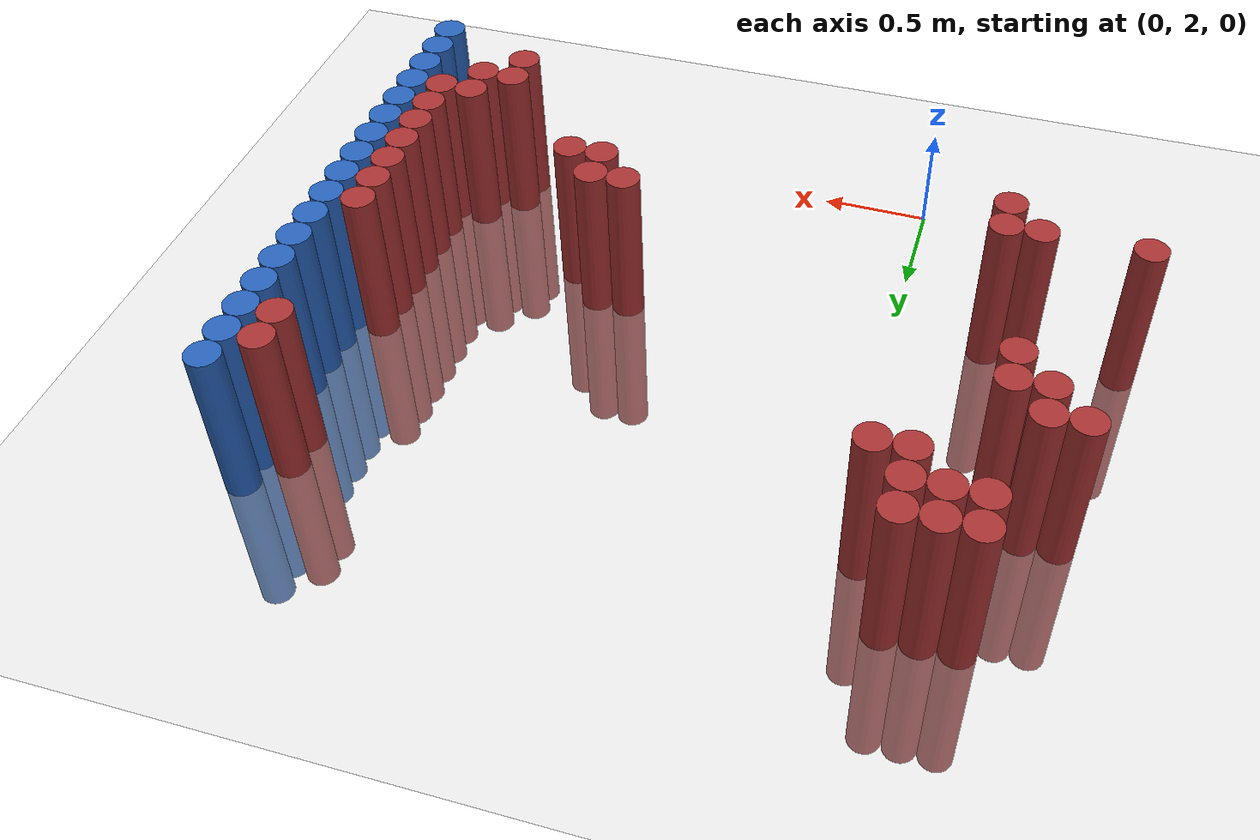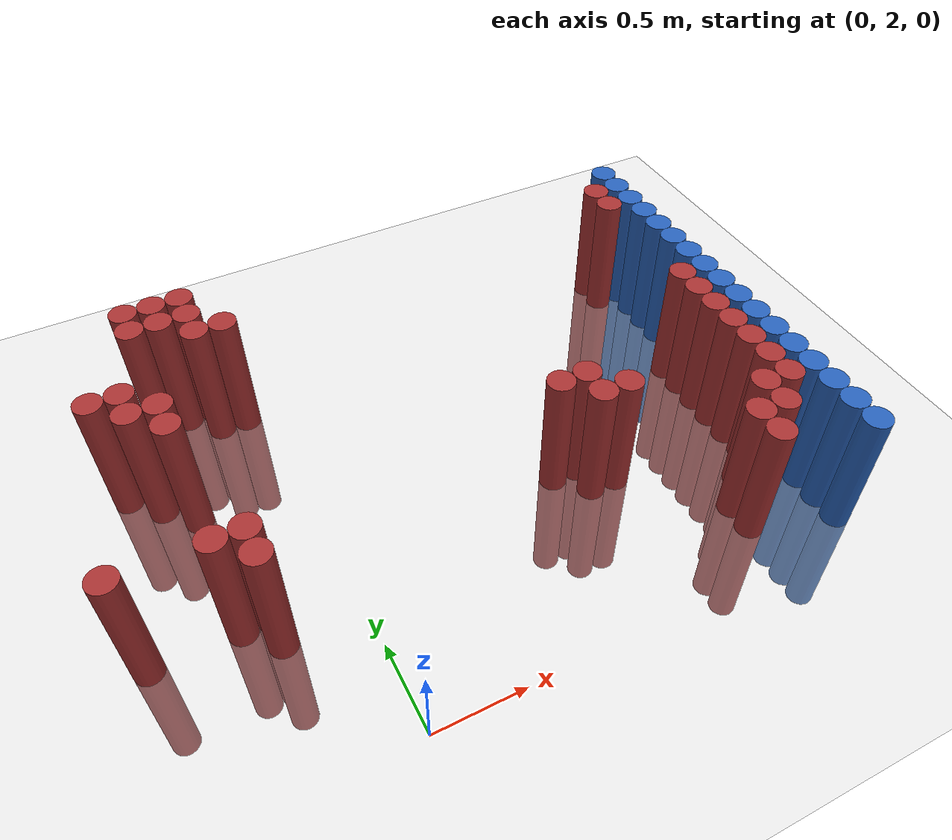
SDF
<sdf version="1.6">
 <world name="default">
  <model name="ground_plane">
   <static>1</static>
   <link name="link">
    <collision name="collision">
     <geometry><plane><normal>0 0 1</normal><size>100 100</size></plane></geometry>
     <surface><friction><ode><mu>100</mu><mu2>50</mu2></ode></friction></surface>
    </collision>
    <visual name="visual">
     <cast_shadows>0</cast_shadows>
     <geometry><plane><normal>0 0 1</normal><size>100 100</size></plane></geometry>
     <material>
      <script><uri>file://media/materials/scripts/gazebo.material</uri><name>Gazebo/Grey</name></script>
     </material>
    </visual>
   </link>
  </model>
  <model name="unit_cylinder_149">
   <static>1</static>
   <pose>-1.025000 2.875000 0.000000 0.000000 0.000000 0.000000</pose>
   <link name="link">
    <inertial>
     <mass>1</mass>
     <inertia><ixx>0.145833</ixx><ixy>0</ixy><ixz>0</ixz><iyy>0.145833</iyy><iyz>0</iyz><izz>0.125</izz></inertia>
    </inertial>
    <collision name="collision">
     <geometry><cylinder><radius>0.075000</radius><length>1.5</length></cylinder></geometry>
    </collision>
    <visual name="visual">
     <geometry><cylinder><radius>0.075000</radius><length>1.5</length></cylinder></geometry>
     <material>
      <ambient>0.648000 0.192000 0.192000 1</ambient>
      <diffuse>0.648000 0.192000 0.192000 1</diffuse>
     </material>
     <material>
      <script><name>Gazebo/Grey</name><uri>file://media/materials/scripts/gazebo.material</uri></script>
     </material>
    </visual>
   </link>
  </model>
  <model name="unit_cylinder_150">
   <static>1</static>
   <pose>-0.875000 3.925000 0.000000 0.000000 0.000000 0.000000</pose>
   <link name="link">
    <inertial>
     <mass>1</mass>
     <inertia><ixx>0.145833</ixx><ixy>0</ixy><ixz>0</ixz><iyy>0.145833</iyy><iyz>0</iyz><izz>0.125</izz></inertia>
    </inertial>
    <collision name="collision">
     <geometry><cylinder><radius>0.075000</radius><length>1.5</length></cylinder></geometry>
    </collision>
    <visual name="visual">
     <geometry><cylinder><radius>0.075000</radius><length>1.5</length></cylinder></geometry>
     <material>
      <ambient>0.648000 0.192000 0.192000 1</ambient>
      <diffuse>0.648000 0.192000 0.192000 1</diffuse>
     </material>
     <material>
      <script><name>Gazebo/Grey</name><uri>file://media/materials/scripts/gazebo.material</uri></script>
     </material>
    </visual>
   </link>
  </model>
  <model name="unit_cylinder_151">
   <static>1</static>
   <pose>-0.725000 3.775000 0.000000 0.000000 0.000000 0.000000</pose>
   <link name="link">
    <inertial>
     <mass>1</mass>
     <inertia><ixx>0.145833</ixx><ixy>0</ixy><ixz>0</ixz><iyy>0.145833</iyy><iyz>0</iyz><izz>0.125</izz></inertia>
    </inertial>
    <collision name="collision">
     <geometry><cylinder><radius>0.075000</radius><length>1.5</length></cylinder></geometry>
    </collision>
    <visual name="visual">
     <geometry><cylinder><radius>0.075000</radius><length>1.5</length></cylinder></geometry>
     <material>
      <ambient>0.648000 0.192000 0.192000 1</ambient>
      <diffuse>0.648000 0.192000 0.192000 1</diffuse>
     </material>
     <material>
      <script><name>Gazebo/Grey</name><uri>file://media/materials/scripts/gazebo.material</uri></script>
     </material>
    </visual>
   </link>
  </model>
  <model name="unit_cylinder_152">
   <static>1</static>
   <pose>-0.725000 3.925000 0.000000 0.000000 0.000000 0.000000</pose>
   <link name="link">
    <inertial>
     <mass>1</mass>
     <inertia><ixx>0.145833</ixx><ixy>0</ixy><ixz>0</ixz><iyy>0.145833</iyy><iyz>0</iyz><izz>0.125</izz></inertia>
    </inertial>
    <collision name="collision">
     <geometry><cylinder><radius>0.075000</radius><length>1.5</length></cylinder></geometry>
    </collision>
    <visual name="visual">
     <geometry><cylinder><radius>0.075000</radius><length>1.5</length></cylinder></geometry>
     <material>
      <ambient>0.648000 0.192000 0.192000 1</ambient>
      <diffuse>0.648000 0.192000 0.192000 1</diffuse>
     </material>
     <material>
      <script><name>Gazebo/Grey</name><uri>file://media/materials/scripts/gazebo.material</uri></script>
     </material>
    </visual>
   </link>
  </model>
  <model name="unit_cylinder_157">
   <static>1</static>
   <pose>-0.575000 2.875000 0.000000 0.000000 0.000000 0.000000</pose>
   <link name="link">
    <inertial>
     <mass>1</mass>
     <inertia><ixx>0.145833</ixx><ixy>0</ixy><ixz>0</ixz><iyy>0.145833</iyy><iyz>0</iyz><izz>0.125</izz></inertia>
    </inertial>
    <collision name="collision">
     <geometry><cylinder><radius>0.075000</radius><length>1.5</length></cylinder></geometry>
    </collision>
    <visual name="visual">
     <geometry><cylinder><radius>0.075000</radius><length>1.5</length></cylinder></geometry>
     <material>
      <ambient>0.648000 0.192000 0.192000 1</ambient>
      <diffuse>0.648000 0.192000 0.192000 1</diffuse>
     </material>
     <material>
      <script><name>Gazebo/Grey</name><uri>file://media/materials/scripts/gazebo.material</uri></script>
     </material>
    </visual>
   </link>
  </model>
  <model name="unit_cylinder_158">
   <static>1</static>
   <pose>-0.575000 3.625000 0.000000 0.000000 0.000000 0.000000</pose>
   <link name="link">
    <inertial>
     <mass>1</mass>
     <inertia><ixx>0.145833</ixx><ixy>0</ixy><ixz>0</ixz><iyy>0.145833</iyy><iyz>0</iyz><izz>0.125</izz></inertia>
    </inertial>
    <collision name="collision">
     <geometry><cylinder><radius>0.075000</radius><length>1.5</length></cylinder></geometry>
    </collision>
    <visual name="visual">
     <geometry><cylinder><radius>0.075000</radius><length>1.5</length></cylinder></geometry>
     <material>
      <ambient>0.648000 0.192000 0.192000 1</ambient>
      <diffuse>0.648000 0.192000 0.192000 1</diffuse>
     </material>
     <material>
      <script><name>Gazebo/Grey</name><uri>file://media/materials/scripts/gazebo.material</uri></script>
     </material>
    </visual>
   </link>
  </model>
  <model name="unit_cylinder_159">
   <static>1</static>
   <pose>-0.575000 3.775000 0.000000 0.000000 0.000000 0.000000</pose>
   <link name="link">
    <inertial>
     <mass>1</mass>
     <inertia><ixx>0.145833</ixx><ixy>0</ixy><ixz>0</ixz><iyy>0.145833</iyy><iyz>0</iyz><izz>0.125</izz></inertia>
    </inertial>
    <collision name="collision">
     <geometry><cylinder><radius>0.075000</radius><length>1.5</length></cylinder></geometry>
    </collision>
    <visual name="visual">
     <geometry><cylinder><radius>0.075000</radius><length>1.5</length></cylinder></geometry>
     <material>
      <ambient>0.648000 0.192000 0.192000 1</ambient>
      <diffuse>0.648000 0.192000 0.192000 1</diffuse>
     </material>
     <material>
      <script><name>Gazebo/Grey</name><uri>file://media/materials/scripts/gazebo.material</uri></script>
     </material>
    </visual>
   </link>
  </model>
  <model name="unit_cylinder_160">
   <static>1</static>
   <pose>-0.575000 4.375000 0.000000 0.000000 0.000000 0.000000</pose>
   <link name="link">
    <inertial>
     <mass>1</mass>
     <inertia><ixx>0.145833</ixx><ixy>0</ixy><ixz>0</ixz><iyy>0.145833</iyy><iyz>0</iyz><izz>0.125</izz></inertia>
    </inertial>
    <collision name="collision">
     <geometry><cylinder><radius>0.075000</radius><length>1.5</length></cylinder></geometry>
    </collision>
    <visual name="visual">
     <geometry><cylinder><radius>0.075000</radius><length>1.5</length></cylinder></geometry>
     <material>
      <ambient>0.648000 0.192000 0.192000 1</ambient>
      <diffuse>0.648000 0.192000 0.192000 1</diffuse>
     </material>
     <material>
      <script><name>Gazebo/Grey</name><uri>file://media/materials/scripts/gazebo.material</uri></script>
     </material>
    </visual>
   </link>
  </model>
  <model name="unit_cylinder_161">
   <static>1</static>
   <pose>-0.575000 4.525000 0.000000 0.000000 0.000000 0.000000</pose>
   <link name="link">
    <inertial>
     <mass>1</mass>
     <inertia><ixx>0.145833</ixx><ixy>0</ixy><ixz>0</ixz><iyy>0.145833</iyy><iyz>0</iyz><izz>0.125</izz></inertia>
    </inertial>
    <collision name="collision">
     <geometry><cylinder><radius>0.075000</radius><length>1.5</length></cylinder></geometry>
    </collision>
    <visual name="visual">
     <geometry><cylinder><radius>0.075000</radius><length>1.5</length></cylinder></geometry>
     <material>
      <ambient>0.648000 0.192000 0.192000 1</ambient>
      <diffuse>0.648000 0.192000 0.192000 1</diffuse>
     </material>
     <material>
      <script><name>Gazebo/Grey</name><uri>file://media/materials/scripts/gazebo.material</uri></script>
     </material>
    </visual>
   </link>
  </model>
  <model name="unit_cylinder_165">
   <static>1</static>
   <pose>-0.425000 2.725000 0.000000 0.000000 0.000000 0.000000</pose>
   <link name="link">
    <inertial>
     <mass>1</mass>
     <inertia><ixx>0.145833</ixx><ixy>0</ixy><ixz>0</ixz><iyy>0.145833</iyy><iyz>0</iyz><izz>0.125</izz></inertia>
    </inertial>
    <collision name="collision">
     <geometry><cylinder><radius>0.075000</radius><length>1.5</length></cylinder></geometry>
    </collision>
    <visual name="visual">
     <geometry><cylinder><radius>0.075000</radius><length>1.5</length></cylinder></geometry>
     <material>
      <ambient>0.648000 0.192000 0.192000 1</ambient>
      <diffuse>0.648000 0.192000 0.192000 1</diffuse>
     </material>
     <material>
      <script><name>Gazebo/Grey</name><uri>file://media/materials/scripts/gazebo.material</uri></script>
     </material>
    </visual>
   </link>
  </model>
  <model name="unit_cylinder_166">
   <static>1</static>
   <pose>-0.425000 2.875000 0.000000 0.000000 0.000000 0.000000</pose>
   <link name="link">
    <inertial>
     <mass>1</mass>
     <inertia><ixx>0.145833</ixx><ixy>0</ixy><ixz>0</ixz><iyy>0.145833</iyy><iyz>0</iyz><izz>0.125</izz></inertia>
    </inertial>
    <collision name="collision">
     <geometry><cylinder><radius>0.075000</radius><length>1.5</length></cylinder></geometry>
    </collision>
    <visual name="visual">
     <geometry><cylinder><radius>0.075000</radius><length>1.5</length></cylinder></geometry>
     <material>
      <ambient>0.648000 0.192000 0.192000 1</ambient>
      <diffuse>0.648000 0.192000 0.192000 1</diffuse>
     </material>
     <material>
      <script><name>Gazebo/Grey</name><uri>file://media/materials/scripts/gazebo.material</uri></script>
     </material>
    </visual>
   </link>
  </model>
  <model name="unit_cylinder_167">
   <static>1</static>
   <pose>-0.425000 4.375000 0.000000 0.000000 0.000000 0.000000</pose>
   <link name="link">
    <inertial>
     <mass>1</mass>
     <inertia><ixx>0.145833</ixx><ixy>0</ixy><ixz>0</ixz><iyy>0.145833</iyy><iyz>0</iyz><izz>0.125</izz></inertia>
    </inertial>
    <collision name="collision">
     <geometry><cylinder><radius>0.075000</radius><length>1.5</length></cylinder></geometry>
    </collision>
    <visual name="visual">
     <geometry><cylinder><radius>0.075000</radius><length>1.5</length></cylinder></geometry>
     <material>
      <ambient>0.648000 0.192000 0.192000 1</ambient>
      <diffuse>0.648000 0.192000 0.192000 1</diffuse>
     </material>
     <material>
      <script><name>Gazebo/Grey</name><uri>file://media/materials/scripts/gazebo.material</uri></script>
     </material>
    </visual>
   </link>
  </model>
  <model name="unit_cylinder_168">
   <static>1</static>
   <pose>-0.425000 4.525000 0.000000 0.000000 0.000000 0.000000</pose>
   <link name="link">
    <inertial>
     <mass>1</mass>
     <inertia><ixx>0.145833</ixx><ixy>0</ixy><ixz>0</ixz><iyy>0.145833</iyy><iyz>0</iyz><izz>0.125</izz></inertia>
    </inertial>
    <collision name="collision">
     <geometry><cylinder><radius>0.075000</radius><length>1.5</length></cylinder></geometry>
    </collision>
    <visual name="visual">
     <geometry><cylinder><radius>0.075000</radius><length>1.5</length></cylinder></geometry>
     <material>
      <ambient>0.648000 0.192000 0.192000 1</ambient>
      <diffuse>0.648000 0.192000 0.192000 1</diffuse>
     </material>
     <material>
      <script><name>Gazebo/Grey</name><uri>file://media/materials/scripts/gazebo.material</uri></script>
     </material>
    </visual>
   </link>
  </model>
  <model name="unit_cylinder_171">
   <static>1</static>
   <pose>-0.275000 4.225000 0.000000 0.000000 0.000000 0.000000</pose>
   <link name="link">
    <inertial>
     <mass>1</mass>
     <inertia><ixx>0.145833</ixx><ixy>0</ixy><ixz>0</ixz><iyy>0.145833</iyy><iyz>0</iyz><izz>0.125</izz></inertia>
    </inertial>
    <collision name="collision">
     <geometry><cylinder><radius>0.075000</radius><length>1.5</length></cylinder></geometry>
    </collision>
    <visual name="visual">
     <geometry><cylinder><radius>0.075000</radius><length>1.5</length></cylinder></geometry>
     <material>
      <ambient>0.648000 0.192000 0.192000 1</ambient>
      <diffuse>0.648000 0.192000 0.192000 1</diffuse>
     </material>
     <material>
      <script><name>Gazebo/Grey</name><uri>file://media/materials/scripts/gazebo.material</uri></script>
     </material>
    </visual>
   </link>
  </model>
  <model name="unit_cylinder_172">
   <static>1</static>
   <pose>-0.275000 4.375000 0.000000 0.000000 0.000000 0.000000</pose>
   <link name="link">
    <inertial>
     <mass>1</mass>
     <inertia><ixx>0.145833</ixx><ixy>0</ixy><ixz>0</ixz><iyy>0.145833</iyy><iyz>0</iyz><izz>0.125</izz></inertia>
    </inertial>
    <collision name="collision">
     <geometry><cylinder><radius>0.075000</radius><length>1.5</length></cylinder></geometry>
    </collision>
    <visual name="visual">
     <geometry><cylinder><radius>0.075000</radius><length>1.5</length></cylinder></geometry>
     <material>
      <ambient>0.648000 0.192000 0.192000 1</ambient>
      <diffuse>0.648000 0.192000 0.192000 1</diffuse>
     </material>
     <material>
      <script><name>Gazebo/Grey</name><uri>file://media/materials/scripts/gazebo.material</uri></script>
     </material>
    </visual>
   </link>
  </model>
  <model name="unit_cylinder_173">
   <static>1</static>
   <pose>-0.275000 4.525000 0.000000 0.000000 0.000000 0.000000</pose>
   <link name="link">
    <inertial>
     <mass>1</mass>
     <inertia><ixx>0.145833</ixx><ixy>0</ixy><ixz>0</ixz><iyy>0.145833</iyy><iyz>0</iyz><izz>0.125</izz></inertia>
    </inertial>
    <collision name="collision">
     <geometry><cylinder><radius>0.075000</radius><length>1.5</length></cylinder></geometry>
    </collision>
    <visual name="visual">
     <geometry><cylinder><radius>0.075000</radius><length>1.5</length></cylinder></geometry>
     <material>
      <ambient>0.648000 0.192000 0.192000 1</ambient>
      <diffuse>0.648000 0.192000 0.192000 1</diffuse>
     </material>
     <material>
      <script><name>Gazebo/Grey</name><uri>file://media/materials/scripts/gazebo.material</uri></script>
     </material>
    </visual>
   </link>
  </model>
  <model name="unit_cylinder_177">
   <static>1</static>
   <pose>-0.125000 4.225000 0.000000 0.000000 0.000000 0.000000</pose>
   <link name="link">
    <inertial>
     <mass>1</mass>
     <inertia><ixx>0.145833</ixx><ixy>0</ixy><ixz>0</ixz><iyy>0.145833</iyy><iyz>0</iyz><izz>0.125</izz></inertia>
    </inertial>
    <collision name="collision">
     <geometry><cylinder><radius>0.075000</radius><length>1.5</length></cylinder></geometry>
    </collision>
    <visual name="visual">
     <geometry><cylinder><radius>0.075000</radius><length>1.5</length></cylinder></geometry>
     <material>
      <ambient>0.648000 0.192000 0.192000 1</ambient>
      <diffuse>0.648000 0.192000 0.192000 1</diffuse>
     </material>
     <material>
      <script><name>Gazebo/Grey</name><uri>file://media/materials/scripts/gazebo.material</uri></script>
     </material>
    </visual>
   </link>
  </model>
  <model name="unit_cylinder_203">
   <static>1</static>
   <pose>1.225000 3.025000 0.000000 0.000000 0.000000 0.000000</pose>
   <link name="link">
    <inertial>
     <mass>1</mass>
     <inertia><ixx>0.145833</ixx><ixy>0</ixy><ixz>0</ixz><iyy>0.145833</iyy><iyz>0</iyz><izz>0.125</izz></inertia>
    </inertial>
    <collision name="collision">
     <geometry><cylinder><radius>0.075000</radius><length>1.5</length></cylinder></geometry>
    </collision>
    <visual name="visual">
     <geometry><cylinder><radius>0.075000</radius><length>1.5</length></cylinder></geometry>
     <material>
      <ambient>0.648000 0.192000 0.192000 1</ambient>
      <diffuse>0.648000 0.192000 0.192000 1</diffuse>
     </material>
     <material>
      <script><name>Gazebo/Grey</name><uri>file://media/materials/scripts/gazebo.material</uri></script>
     </material>
    </visual>
   </link>
  </model>
  <model name="unit_cylinder_205">
   <static>1</static>
   <pose>1.375000 2.875000 0.000000 0.000000 0.000000 0.000000</pose>
   <link name="link">
    <inertial>
     <mass>1</mass>
     <inertia><ixx>0.145833</ixx><ixy>0</ixy><ixz>0</ixz><iyy>0.145833</iyy><iyz>0</iyz><izz>0.125</izz></inertia>
    </inertial>
    <collision name="collision">
     <geometry><cylinder><radius>0.075000</radius><length>1.5</length></cylinder></geometry>
    </collision>
    <visual name="visual">
     <geometry><cylinder><radius>0.075000</radius><length>1.5</length></cylinder></geometry>
     <material>
      <ambient>0.648000 0.192000 0.192000 1</ambient>
      <diffuse>0.648000 0.192000 0.192000 1</diffuse>
     </material>
     <material>
      <script><name>Gazebo/Grey</name><uri>file://media/materials/scripts/gazebo.material</uri></script>
     </material>
    </visual>
   </link>
  </model>
  <model name="unit_cylinder_206">
   <static>1</static>
   <pose>1.375000 3.025000 0.000000 0.000000 0.000000 0.000000</pose>
   <link name="link">
    <inertial>
     <mass>1</mass>
     <inertia><ixx>0.145833</ixx><ixy>0</ixy><ixz>0</ixz><iyy>0.145833</iyy><iyz>0</iyz><izz>0.125</izz></inertia>
    </inertial>
    <collision name="collision">
     <geometry><cylinder><radius>0.075000</radius><length>1.5</length></cylinder></geometry>
    </collision>
    <visual name="visual">
     <geometry><cylinder><radius>0.075000</radius><length>1.5</length></cylinder></geometry>
     <material>
      <ambient>0.648000 0.192000 0.192000 1</ambient>
      <diffuse>0.648000 0.192000 0.192000 1</diffuse>
     </material>
     <material>
      <script><name>Gazebo/Grey</name><uri>file://media/materials/scripts/gazebo.material</uri></script>
     </material>
    </visual>
   </link>
  </model>
  <model name="unit_cylinder_207">
   <static>1</static>
   <pose>1.525000 2.875000 0.000000 0.000000 0.000000 0.000000</pose>
   <link name="link">
    <inertial>
     <mass>1</mass>
     <inertia><ixx>0.145833</ixx><ixy>0</ixy><ixz>0</ixz><iyy>0.145833</iyy><iyz>0</iyz><izz>0.125</izz></inertia>
    </inertial>
    <collision name="collision">
     <geometry><cylinder><radius>0.075000</radius><length>1.5</length></cylinder></geometry>
    </collision>
    <visual name="visual">
     <geometry><cylinder><radius>0.075000</radius><length>1.5</length></cylinder></geometry>
     <material>
      <ambient>0.648000 0.192000 0.192000 1</ambient>
      <diffuse>0.648000 0.192000 0.192000 1</diffuse>
     </material>
     <material>
      <script><name>Gazebo/Grey</name><uri>file://media/materials/scripts/gazebo.material</uri></script>
     </material>
    </visual>
   </link>
  </model>
  <model name="unit_cylinder_209">
   <static>1</static>
   <pose>1.975000 2.275000 0.000000 0.000000 0.000000 0.000000</pose>
   <link name="link">
    <inertial>
     <mass>1</mass>
     <inertia><ixx>0.145833</ixx><ixy>0</ixy><ixz>0</ixz><iyy>0.145833</iyy><iyz>0</iyz><izz>0.125</izz></inertia>
    </inertial>
    <collision name="collision">
     <geometry><cylinder><radius>0.075000</radius><length>1.5</length></cylinder></geometry>
    </collision>
    <visual name="visual">
     <geometry><cylinder><radius>0.075000</radius><length>1.5</length></cylinder></geometry>
     <material>
      <ambient>0.648000 0.192000 0.192000 1</ambient>
      <diffuse>0.648000 0.192000 0.192000 1</diffuse>
     </material>
     <material>
      <script><name>Gazebo/Grey</name><uri>file://media/materials/scripts/gazebo.material</uri></script>
     </material>
    </visual>
   </link>
  </model>
  <model name="unit_cylinder_210">
   <static>1</static>
   <pose>1.975000 2.425000 0.000000 0.000000 0.000000 0.000000</pose>
   <link name="link">
    <inertial>
     <mass>1</mass>
     <inertia><ixx>0.145833</ixx><ixy>0</ixy><ixz>0</ixz><iyy>0.145833</iyy><iyz>0</iyz><izz>0.125</izz></inertia>
    </inertial>
    <collision name="collision">
     <geometry><cylinder><radius>0.075000</radius><length>1.5</length></cylinder></geometry>
    </collision>
    <visual name="visual">
     <geometry><cylinder><radius>0.075000</radius><length>1.5</length></cylinder></geometry>
     <material>
      <ambient>0.648000 0.192000 0.192000 1</ambient>
      <diffuse>0.648000 0.192000 0.192000 1</diffuse>
     </material>
     <material>
      <script><name>Gazebo/Grey</name><uri>file://media/materials/scripts/gazebo.material</uri></script>
     </material>
    </visual>
   </link>
  </model>
  <model name="unit_cylinder_213">
   <static>1</static>
   <pose>2.125000 2.425000 0.000000 0.000000 0.000000 0.000000</pose>
   <link name="link">
    <inertial>
     <mass>1</mass>
     <inertia><ixx>0.145833</ixx><ixy>0</ixy><ixz>0</ixz><iyy>0.145833</iyy><iyz>0</iyz><izz>0.125</izz></inertia>
    </inertial>
    <collision name="collision">
     <geometry><cylinder><radius>0.075000</radius><length>1.5</length></cylinder></geometry>
    </collision>
    <visual name="visual">
     <geometry><cylinder><radius>0.075000</radius><length>1.5</length></cylinder></geometry>
     <material>
      <ambient>0.648000 0.192000 0.192000 1</ambient>
      <diffuse>0.648000 0.192000 0.192000 1</diffuse>
     </material>
     <material>
      <script><name>Gazebo/Grey</name><uri>file://media/materials/scripts/gazebo.material</uri></script>
     </material>
    </visual>
   </link>
  </model>
  <model name="unit_cylinder_214">
   <static>1</static>
   <pose>2.125000 2.575000 0.000000 0.000000 0.000000 0.000000</pose>
   <link name="link">
    <inertial>
     <mass>1</mass>
     <inertia><ixx>0.145833</ixx><ixy>0</ixy><ixz>0</ixz><iyy>0.145833</iyy><iyz>0</iyz><izz>0.125</izz></inertia>
    </inertial>
    <collision name="collision">
     <geometry><cylinder><radius>0.075000</radius><length>1.5</length></cylinder></geometry>
    </collision>
    <visual name="visual">
     <geometry><cylinder><radius>0.075000</radius><length>1.5</length></cylinder></geometry>
     <material>
      <ambient>0.648000 0.192000 0.192000 1</ambient>
      <diffuse>0.648000 0.192000 0.192000 1</diffuse>
     </material>
     <material>
      <script><name>Gazebo/Grey</name><uri>file://media/materials/scripts/gazebo.material</uri></script>
     </material>
    </visual>
   </link>
  </model>
  <model name="unit_cylinder_219">
   <static>1</static>
   <pose>2.275000 2.575000 0.000000 0.000000 0.000000 0.000000</pose>
   <link name="link">
    <inertial>
     <mass>1</mass>
     <inertia><ixx>0.145833</ixx><ixy>0</ixy><ixz>0</ixz><iyy>0.145833</iyy><iyz>0</iyz><izz>0.125</izz></inertia>
    </inertial>
    <collision name="collision">
     <geometry><cylinder><radius>0.075000</radius><length>1.5</length></cylinder></geometry>
    </collision>
    <visual name="visual">
     <geometry><cylinder><radius>0.075000</radius><length>1.5</length></cylinder></geometry>
     <material>
      <ambient>0.648000 0.192000 0.192000 1</ambient>
      <diffuse>0.648000 0.192000 0.192000 1</diffuse>
     </material>
     <material>
      <script><name>Gazebo/Grey</name><uri>file://media/materials/scripts/gazebo.material</uri></script>
     </material>
    </visual>
   </link>
  </model>
  <model name="unit_cylinder_220">
   <static>1</static>
   <pose>2.275000 2.725000 0.000000 0.000000 0.000000 0.000000</pose>
   <link name="link">
    <inertial>
     <mass>1</mass>
     <inertia><ixx>0.145833</ixx><ixy>0</ixy><ixz>0</ixz><iyy>0.145833</iyy><iyz>0</iyz><izz>0.125</izz></inertia>
    </inertial>
    <collision name="collision">
     <geometry><cylinder><radius>0.075000</radius><length>1.5</length></cylinder></geometry>
    </collision>
    <visual name="visual">
     <geometry><cylinder><radius>0.075000</radius><length>1.5</length></cylinder></geometry>
     <material>
      <ambient>0.648000 0.192000 0.192000 1</ambient>
      <diffuse>0.648000 0.192000 0.192000 1</diffuse>
     </material>
     <material>
      <script><name>Gazebo/Grey</name><uri>file://media/materials/scripts/gazebo.material</uri></script>
     </material>
    </visual>
   </link>
  </model>
  <model name="unit_cylinder_221">
   <static>1</static>
   <pose>2.275000 2.875000 0.000000 0.000000 0.000000 0.000000</pose>
   <link name="link">
    <inertial>
     <mass>1</mass>
     <inertia><ixx>0.145833</ixx><ixy>0</ixy><ixz>0</ixz><iyy>0.145833</iyy><iyz>0</iyz><izz>0.125</izz></inertia>
    </inertial>
    <collision name="collision">
     <geometry><cylinder><radius>0.075000</radius><length>1.5</length></cylinder></geometry>
    </collision>
    <visual name="visual">
     <geometry><cylinder><radius>0.075000</radius><length>1.5</length></cylinder></geometry>
     <material>
      <ambient>0.648000 0.192000 0.192000 1</ambient>
      <diffuse>0.648000 0.192000 0.192000 1</diffuse>
     </material>
     <material>
      <script><name>Gazebo/Grey</name><uri>file://media/materials/scripts/gazebo.material</uri></script>
     </material>
    </visual>
   </link>
  </model>
  <model name="unit_cylinder_222">
   <static>1</static>
   <pose>2.275000 3.025000 0.000000 0.000000 0.000000 0.000000</pose>
   <link name="link">
    <inertial>
     <mass>1</mass>
     <inertia><ixx>0.145833</ixx><ixy>0</ixy><ixz>0</ixz><iyy>0.145833</iyy><iyz>0</iyz><izz>0.125</izz></inertia>
    </inertial>
    <collision name="collision">
     <geometry><cylinder><radius>0.075000</radius><length>1.5</length></cylinder></geometry>
    </collision>
    <visual name="visual">
     <geometry><cylinder><radius>0.075000</radius><length>1.5</length></cylinder></geometry>
     <material>
      <ambient>0.648000 0.192000 0.192000 1</ambient>
      <diffuse>0.648000 0.192000 0.192000 1</diffuse>
     </material>
     <material>
      <script><name>Gazebo/Grey</name><uri>file://media/materials/scripts/gazebo.material</uri></script>
     </material>
    </visual>
   </link>
  </model>
  <model name="unit_cylinder_223">
   <static>1</static>
   <pose>2.275000 3.175000 0.000000 0.000000 0.000000 0.000000</pose>
   <link name="link">
    <inertial>
     <mass>1</mass>
     <inertia><ixx>0.145833</ixx><ixy>0</ixy><ixz>0</ixz><iyy>0.145833</iyy><iyz>0</iyz><izz>0.125</izz></inertia>
    </inertial>
    <collision name="collision">
     <geometry><cylinder><radius>0.075000</radius><length>1.5</length></cylinder></geometry>
    </collision>
    <visual name="visual">
     <geometry><cylinder><radius>0.075000</radius><length>1.5</length></cylinder></geometry>
     <material>
      <ambient>0.648000 0.192000 0.192000 1</ambient>
      <diffuse>0.648000 0.192000 0.192000 1</diffuse>
     </material>
     <material>
      <script><name>Gazebo/Grey</name><uri>file://media/materials/scripts/gazebo.material</uri></script>
     </material>
    </visual>
   </link>
  </model>
  <model name="unit_cylinder_224">
   <static>1</static>
   <pose>2.275000 3.325000 0.000000 0.000000 0.000000 0.000000</pose>
   <link name="link">
    <inertial>
     <mass>1</mass>
     <inertia><ixx>0.145833</ixx><ixy>0</ixy><ixz>0</ixz><iyy>0.145833</iyy><iyz>0</iyz><izz>0.125</izz></inertia>
    </inertial>
    <collision name="collision">
     <geometry><cylinder><radius>0.075000</radius><length>1.5</length></cylinder></geometry>
    </collision>
    <visual name="visual">
     <geometry><cylinder><radius>0.075000</radius><length>1.5</length></cylinder></geometry>
     <material>
      <ambient>0.648000 0.192000 0.192000 1</ambient>
      <diffuse>0.648000 0.192000 0.192000 1</diffuse>
     </material>
     <material>
      <script><name>Gazebo/Grey</name><uri>file://media/materials/scripts/gazebo.material</uri></script>
     </material>
    </visual>
   </link>
  </model>
  <model name="unit_cylinder_225">
   <static>1</static>
   <pose>2.275000 3.475000 0.000000 0.000000 0.000000 0.000000</pose>
   <link name="link">
    <inertial>
     <mass>1</mass>
     <inertia><ixx>0.145833</ixx><ixy>0</ixy><ixz>0</ixz><iyy>0.145833</iyy><iyz>0</iyz><izz>0.125</izz></inertia>
    </inertial>
    <collision name="collision">
     <geometry><cylinder><radius>0.075000</radius><length>1.5</length></cylinder></geometry>
    </collision>
    <visual name="visual">
     <geometry><cylinder><radius>0.075000</radius><length>1.5</length></cylinder></geometry>
     <material>
      <ambient>0.648000 0.192000 0.192000 1</ambient>
      <diffuse>0.648000 0.192000 0.192000 1</diffuse>
     </material>
     <material>
      <script><name>Gazebo/Grey</name><uri>file://media/materials/scripts/gazebo.material</uri></script>
     </material>
    </visual>
   </link>
  </model>
  <model name="unit_cylinder_226">
   <static>1</static>
   <pose>2.275000 4.225000 0.000000 0.000000 0.000000 0.000000</pose>
   <link name="link">
    <inertial>
     <mass>1</mass>
     <inertia><ixx>0.145833</ixx><ixy>0</ixy><ixz>0</ixz><iyy>0.145833</iyy><iyz>0</iyz><izz>0.125</izz></inertia>
    </inertial>
    <collision name="collision">
     <geometry><cylinder><radius>0.075000</radius><length>1.5</length></cylinder></geometry>
    </collision>
    <visual name="visual">
     <geometry><cylinder><radius>0.075000</radius><length>1.5</length></cylinder></geometry>
     <material>
      <ambient>0.648000 0.192000 0.192000 1</ambient>
      <diffuse>0.648000 0.192000 0.192000 1</diffuse>
     </material>
     <material>
      <script><name>Gazebo/Grey</name><uri>file://media/materials/scripts/gazebo.material</uri></script>
     </material>
    </visual>
   </link>
  </model>
  <model name="unit_cylinder_227">
   <static>1</static>
   <pose>2.275000 4.375000 0.000000 0.000000 0.000000 0.000000</pose>
   <link name="link">
    <inertial>
     <mass>1</mass>
     <inertia><ixx>0.145833</ixx><ixy>0</ixy><ixz>0</ixz><iyy>0.145833</iyy><iyz>0</iyz><izz>0.125</izz></inertia>
    </inertial>
    <collision name="collision">
     <geometry><cylinder><radius>0.075000</radius><length>1.5</length></cylinder></geometry>
    </collision>
    <visual name="visual">
     <geometry><cylinder><radius>0.075000</radius><length>1.5</length></cylinder></geometry>
     <material>
      <ambient>0.648000 0.192000 0.192000 1</ambient>
      <diffuse>0.648000 0.192000 0.192000 1</diffuse>
     </material>
     <material>
      <script><name>Gazebo/Grey</name><uri>file://media/materials/scripts/gazebo.material</uri></script>
     </material>
    </visual>
   </link>
  </model>
  <model name="unit_cylinder_241">
   <static>1</static>
   <pose>2.425000 2.125000 0.000000 0.000000 0.000000 0.000000</pose>
   <link name="link">
    <inertial>
     <mass>1</mass>
     <inertia><ixx>0.145833</ixx><ixy>0</ixy><ixz>0</ixz><iyy>0.145833</iyy><iyz>0</iyz><izz>0.125</izz></inertia>
    </inertial>
    <collision name="collision">
     <geometry><cylinder><radius>0.075000</radius><length>1.5</length></cylinder></geometry>
    </collision>
    <visual name="visual">
     <geometry><cylinder><radius>0.075000</radius><length>1.5</length></cylinder></geometry>
     <material>
      <ambient>0.152000 0.379000 0.720000 1</ambient>
      <diffuse>0.152000 0.379000 0.720000 1</diffuse>
     </material>
     <material>
      <script><name>Gazebo/Grey</name><uri>file://media/materials/scripts/gazebo.material</uri></script>
     </material>
    </visual>
   </link>
  </model>
  <model name="unit_cylinder_242">
   <static>1</static>
   <pose>2.425000 2.275000 0.000000 0.000000 0.000000 0.000000</pose>
   <link name="link">
    <inertial>
     <mass>1</mass>
     <inertia><ixx>0.145833</ixx><ixy>0</ixy><ixz>0</ixz><iyy>0.145833</iyy><iyz>0</iyz><izz>0.125</izz></inertia>
    </inertial>
    <collision name="collision">
     <geometry><cylinder><radius>0.075000</radius><length>1.5</length></cylinder></geometry>
    </collision>
    <visual name="visual">
     <geometry><cylinder><radius>0.075000</radius><length>1.5</length></cylinder></geometry>
     <material>
      <ambient>0.152000 0.379000 0.720000 1</ambient>
      <diffuse>0.152000 0.379000 0.720000 1</diffuse>
     </material>
     <material>
      <script><name>Gazebo/Grey</name><uri>file://media/materials/scripts/gazebo.material</uri></script>
     </material>
    </visual>
   </link>
  </model>
  <model name="unit_cylinder_243">
   <static>1</static>
   <pose>2.425000 2.425000 0.000000 0.000000 0.000000 0.000000</pose>
   <link name="link">
    <inertial>
     <mass>1</mass>
     <inertia><ixx>0.145833</ixx><ixy>0</ixy><ixz>0</ixz><iyy>0.145833</iyy><iyz>0</iyz><izz>0.125</izz></inertia>
    </inertial>
    <collision name="collision">
     <geometry><cylinder><radius>0.075000</radius><length>1.5</length></cylinder></geometry>
    </collision>
    <visual name="visual">
     <geometry><cylinder><radius>0.075000</radius><length>1.5</length></cylinder></geometry>
     <material>
      <ambient>0.152000 0.379000 0.720000 1</ambient>
      <diffuse>0.152000 0.379000 0.720000 1</diffuse>
     </material>
     <material>
      <script><name>Gazebo/Grey</name><uri>file://media/materials/scripts/gazebo.material</uri></script>
     </material>
    </visual>
   </link>
  </model>
  <model name="unit_cylinder_244">
   <static>1</static>
   <pose>2.425000 2.575000 0.000000 0.000000 0.000000 0.000000</pose>
   <link name="link">
    <inertial>
     <mass>1</mass>
     <inertia><ixx>0.145833</ixx><ixy>0</ixy><ixz>0</ixz><iyy>0.145833</iyy><iyz>0</iyz><izz>0.125</izz></inertia>
    </inertial>
    <collision name="collision">
     <geometry><cylinder><radius>0.075000</radius><length>1.5</length></cylinder></geometry>
    </collision>
    <visual name="visual">
     <geometry><cylinder><radius>0.075000</radius><length>1.5</length></cylinder></geometry>
     <material>
      <ambient>0.152000 0.379000 0.720000 1</ambient>
      <diffuse>0.152000 0.379000 0.720000 1</diffuse>
     </material>
     <material>
      <script><name>Gazebo/Grey</name><uri>file://media/materials/scripts/gazebo.material</uri></script>
     </material>
    </visual>
   </link>
  </model>
  <model name="unit_cylinder_245">
   <static>1</static>
   <pose>2.425000 2.725000 0.000000 0.000000 0.000000 0.000000</pose>
   <link name="link">
    <inertial>
     <mass>1</mass>
     <inertia><ixx>0.145833</ixx><ixy>0</ixy><ixz>0</ixz><iyy>0.145833</iyy><iyz>0</iyz><izz>0.125</izz></inertia>
    </inertial>
    <collision name="collision">
     <geometry><cylinder><radius>0.075000</radius><length>1.5</length></cylinder></geometry>
    </collision>
    <visual name="visual">
     <geometry><cylinder><radius>0.075000</radius><length>1.5</length></cylinder></geometry>
     <material>
      <ambient>0.152000 0.379000 0.720000 1</ambient>
      <diffuse>0.152000 0.379000 0.720000 1</diffuse>
     </material>
     <material>
      <script><name>Gazebo/Grey</name><uri>file://media/materials/scripts/gazebo.material</uri></script>
     </material>
    </visual>
   </link>
  </model>
  <model name="unit_cylinder_246">
   <static>1</static>
   <pose>2.425000 2.875000 0.000000 0.000000 0.000000 0.000000</pose>
   <link name="link">
    <inertial>
     <mass>1</mass>
     <inertia><ixx>0.145833</ixx><ixy>0</ixy><ixz>0</ixz><iyy>0.145833</iyy><iyz>0</iyz><izz>0.125</izz></inertia>
    </inertial>
    <collision name="collision">
     <geometry><cylinder><radius>0.075000</radius><length>1.5</length></cylinder></geometry>
    </collision>
    <visual name="visual">
     <geometry><cylinder><radius>0.075000</radius><length>1.5</length></cylinder></geometry>
     <material>
      <ambient>0.152000 0.379000 0.720000 1</ambient>
      <diffuse>0.152000 0.379000 0.720000 1</diffuse>
     </material>
     <material>
      <script><name>Gazebo/Grey</name><uri>file://media/materials/scripts/gazebo.material</uri></script>
     </material>
    </visual>
   </link>
  </model>
  <model name="unit_cylinder_247">
   <static>1</static>
   <pose>2.425000 3.025000 0.000000 0.000000 0.000000 0.000000</pose>
   <link name="link">
    <inertial>
     <mass>1</mass>
     <inertia><ixx>0.145833</ixx><ixy>0</ixy><ixz>0</ixz><iyy>0.145833</iyy><iyz>0</iyz><izz>0.125</izz></inertia>
    </inertial>
    <collision name="collision">
     <geometry><cylinder><radius>0.075000</radius><length>1.5</length></cylinder></geometry>
    </collision>
    <visual name="visual">
     <geometry><cylinder><radius>0.075000</radius><length>1.5</length></cylinder></geometry>
     <material>
      <ambient>0.152000 0.379000 0.720000 1</ambient>
      <diffuse>0.152000 0.379000 0.720000 1</diffuse>
     </material>
     <material>
      <script><name>Gazebo/Grey</name><uri>file://media/materials/scripts/gazebo.material</uri></script>
     </material>
    </visual>
   </link>
  </model>
  <model name="unit_cylinder_248">
   <static>1</static>
   <pose>2.425000 3.175000 0.000000 0.000000 0.000000 0.000000</pose>
   <link name="link">
    <inertial>
     <mass>1</mass>
     <inertia><ixx>0.145833</ixx><ixy>0</ixy><ixz>0</ixz><iyy>0.145833</iyy><iyz>0</iyz><izz>0.125</izz></inertia>
    </inertial>
    <collision name="collision">
     <geometry><cylinder><radius>0.075000</radius><length>1.5</length></cylinder></geometry>
    </collision>
    <visual name="visual">
     <geometry><cylinder><radius>0.075000</radius><length>1.5</length></cylinder></geometry>
     <material>
      <ambient>0.152000 0.379000 0.720000 1</ambient>
      <diffuse>0.152000 0.379000 0.720000 1</diffuse>
     </material>
     <material>
      <script><name>Gazebo/Grey</name><uri>file://media/materials/scripts/gazebo.material</uri></script>
     </material>
    </visual>
   </link>
  </model>
  <model name="unit_cylinder_249">
   <static>1</static>
   <pose>2.425000 3.325000 0.000000 0.000000 0.000000 0.000000</pose>
   <link name="link">
    <inertial>
     <mass>1</mass>
     <inertia><ixx>0.145833</ixx><ixy>0</ixy><ixz>0</ixz><iyy>0.145833</iyy><iyz>0</iyz><izz>0.125</izz></inertia>
    </inertial>
    <collision name="collision">
     <geometry><cylinder><radius>0.075000</radius><length>1.5</length></cylinder></geometry>
    </collision>
    <visual name="visual">
     <geometry><cylinder><radius>0.075000</radius><length>1.5</length></cylinder></geometry>
     <material>
      <ambient>0.152000 0.379000 0.720000 1</ambient>
      <diffuse>0.152000 0.379000 0.720000 1</diffuse>
     </material>
     <material>
      <script><name>Gazebo/Grey</name><uri>file://media/materials/scripts/gazebo.material</uri></script>
     </material>
    </visual>
   </link>
  </model>
  <model name="unit_cylinder_250">
   <static>1</static>
   <pose>2.425000 3.475000 0.000000 0.000000 0.000000 0.000000</pose>
   <link name="link">
    <inertial>
     <mass>1</mass>
     <inertia><ixx>0.145833</ixx><ixy>0</ixy><ixz>0</ixz><iyy>0.145833</iyy><iyz>0</iyz><izz>0.125</izz></inertia>
    </inertial>
    <collision name="collision">
     <geometry><cylinder><radius>0.075000</radius><length>1.5</length></cylinder></geometry>
    </collision>
    <visual name="visual">
     <geometry><cylinder><radius>0.075000</radius><length>1.5</length></cylinder></geometry>
     <material>
      <ambient>0.152000 0.379000 0.720000 1</ambient>
      <diffuse>0.152000 0.379000 0.720000 1</diffuse>
     </material>
     <material>
      <script><name>Gazebo/Grey</name><uri>file://media/materials/scripts/gazebo.material</uri></script>
     </material>
    </visual>
   </link>
  </model>
  <model name="unit_cylinder_251">
   <static>1</static>
   <pose>2.425000 3.625000 0.000000 0.000000 0.000000 0.000000</pose>
   <link name="link">
    <inertial>
     <mass>1</mass>
     <inertia><ixx>0.145833</ixx><ixy>0</ixy><ixz>0</ixz><iyy>0.145833</iyy><iyz>0</iyz><izz>0.125</izz></inertia>
    </inertial>
    <collision name="collision">
     <geometry><cylinder><radius>0.075000</radius><length>1.5</length></cylinder></geometry>
    </collision>
    <visual name="visual">
     <geometry><cylinder><radius>0.075000</radius><length>1.5</length></cylinder></geometry>
     <material>
      <ambient>0.152000 0.379000 0.720000 1</ambient>
      <diffuse>0.152000 0.379000 0.720000 1</diffuse>
     </material>
     <material>
      <script><name>Gazebo/Grey</name><uri>file://media/materials/scripts/gazebo.material</uri></script>
     </material>
    </visual>
   </link>
  </model>
  <model name="unit_cylinder_252">
   <static>1</static>
   <pose>2.425000 3.775000 0.000000 0.000000 0.000000 0.000000</pose>
   <link name="link">
    <inertial>
     <mass>1</mass>
     <inertia><ixx>0.145833</ixx><ixy>0</ixy><ixz>0</ixz><iyy>0.145833</iyy><iyz>0</iyz><izz>0.125</izz></inertia>
    </inertial>
    <collision name="collision">
     <geometry><cylinder><radius>0.075000</radius><length>1.5</length></cylinder></geometry>
    </collision>
    <visual name="visual">
     <geometry><cylinder><radius>0.075000</radius><length>1.5</length></cylinder></geometry>
     <material>
      <ambient>0.152000 0.379000 0.720000 1</ambient>
      <diffuse>0.152000 0.379000 0.720000 1</diffuse>
     </material>
     <material>
      <script><name>Gazebo/Grey</name><uri>file://media/materials/scripts/gazebo.material</uri></script>
     </material>
    </visual>
   </link>
  </model>
  <model name="unit_cylinder_253">
   <static>1</static>
   <pose>2.425000 3.925000 0.000000 0.000000 0.000000 0.000000</pose>
   <link name="link">
    <inertial>
     <mass>1</mass>
     <inertia><ixx>0.145833</ixx><ixy>0</ixy><ixz>0</ixz><iyy>0.145833</iyy><iyz>0</iyz><izz>0.125</izz></inertia>
    </inertial>
    <collision name="collision">
     <geometry><cylinder><radius>0.075000</radius><length>1.5</length></cylinder></geometry>
    </collision>
    <visual name="visual">
     <geometry><cylinder><radius>0.075000</radius><length>1.5</length></cylinder></geometry>
     <material>
      <ambient>0.152000 0.379000 0.720000 1</ambient>
      <diffuse>0.152000 0.379000 0.720000 1</diffuse>
     </material>
     <material>
      <script><name>Gazebo/Grey</name><uri>file://media/materials/scripts/gazebo.material</uri></script>
     </material>
    </visual>
   </link>
  </model>
  <model name="unit_cylinder_254">
   <static>1</static>
   <pose>2.425000 4.075000 0.000000 0.000000 0.000000 0.000000</pose>
   <link name="link">
    <inertial>
     <mass>1</mass>
     <inertia><ixx>0.145833</ixx><ixy>0</ixy><ixz>0</ixz><iyy>0.145833</iyy><iyz>0</iyz><izz>0.125</izz></inertia>
    </inertial>
    <collision name="collision">
     <geometry><cylinder><radius>0.075000</radius><length>1.5</length></cylinder></geometry>
    </collision>
    <visual name="visual">
     <geometry><cylinder><radius>0.075000</radius><length>1.5</length></cylinder></geometry>
     <material>
      <ambient>0.152000 0.379000 0.720000 1</ambient>
      <diffuse>0.152000 0.379000 0.720000 1</diffuse>
     </material>
     <material>
      <script><name>Gazebo/Grey</name><uri>file://media/materials/scripts/gazebo.material</uri></script>
     </material>
    </visual>
   </link>
  </model>
  <model name="unit_cylinder_255">
   <static>1</static>
   <pose>2.425000 4.225000 0.000000 0.000000 0.000000 0.000000</pose>
   <link name="link">
    <inertial>
     <mass>1</mass>
     <inertia><ixx>0.145833</ixx><ixy>0</ixy><ixz>0</ixz><iyy>0.145833</iyy><iyz>0</iyz><izz>0.125</izz></inertia>
    </inertial>
    <collision name="collision">
     <geometry><cylinder><radius>0.075000</radius><length>1.5</length></cylinder></geometry>
    </collision>
    <visual name="visual">
     <geometry><cylinder><radius>0.075000</radius><length>1.5</length></cylinder></geometry>
     <material>
      <ambient>0.152000 0.379000 0.720000 1</ambient>
      <diffuse>0.152000 0.379000 0.720000 1</diffuse>
     </material>
     <material>
      <script><name>Gazebo/Grey</name><uri>file://media/materials/scripts/gazebo.material</uri></script>
     </material>
    </visual>
   </link>
  </model>
  <model name="unit_cylinder_256">
   <static>1</static>
   <pose>2.425000 4.375000 0.000000 0.000000 0.000000 0.000000</pose>
   <link name="link">
    <inertial>
     <mass>1</mass>
     <inertia><ixx>0.145833</ixx><ixy>0</ixy><ixz>0</ixz><iyy>0.145833</iyy><iyz>0</iyz><izz>0.125</izz></inertia>
    </inertial>
    <collision name="collision">
     <geometry><cylinder><radius>0.075000</radius><length>1.5</length></cylinder></geometry>
    </collision>
    <visual name="visual">
     <geometry><cylinder><radius>0.075000</radius><length>1.5</length></cylinder></geometry>
     <material>
      <ambient>0.152000 0.379000 0.720000 1</ambient>
      <diffuse>0.152000 0.379000 0.720000 1</diffuse>
     </material>
     <material>
      <script><name>Gazebo/Grey</name><uri>file://media/materials/scripts/gazebo.material</uri></script>
     </material>
    </visual>
   </link>
  </model>
  <model name="unit_cylinder_257">
   <static>1</static>
   <pose>2.425000 4.525000 0.000000 0.000000 0.000000 0.000000</pose>
   <link name="link">
    <inertial>
     <mass>1</mass>
     <inertia><ixx>0.145833</ixx><ixy>0</ixy><ixz>0</ixz><iyy>0.145833</iyy><iyz>0</iyz><izz>0.125</izz></inertia>
    </inertial>
    <collision name="collision">
     <geometry><cylinder><radius>0.075000</radius><length>1.5</length></cylinder></geometry>
    </collision>
    <visual name="visual">
     <geometry><cylinder><radius>0.075000</radius><length>1.5</length></cylinder></geometry>
     <material>
      <ambient>0.152000 0.379000 0.720000 1</ambient>
      <diffuse>0.152000 0.379000 0.720000 1</diffuse>
     </material>
     <material>
      <script><name>Gazebo/Grey</name><uri>file://media/materials/scripts/gazebo.material</uri></script>
     </material>
    </visual>
   </link>
  </model>
 </world>
</sdf>
